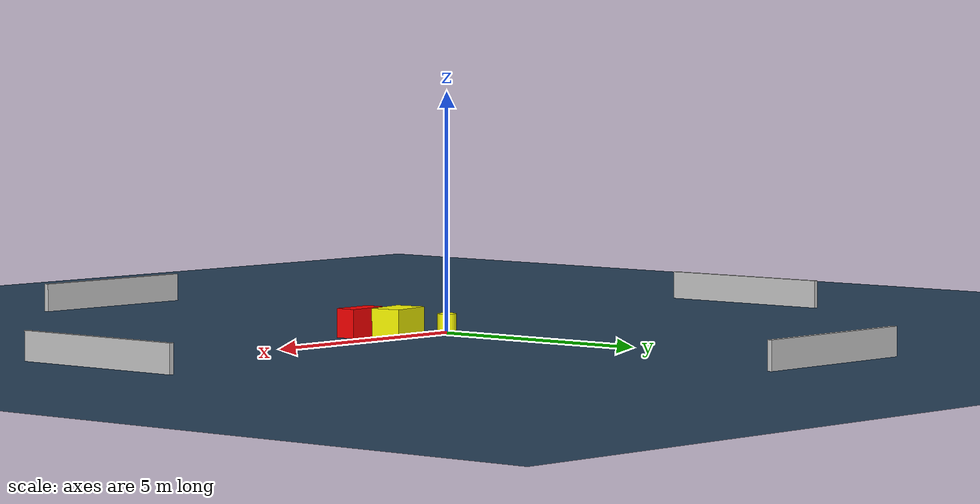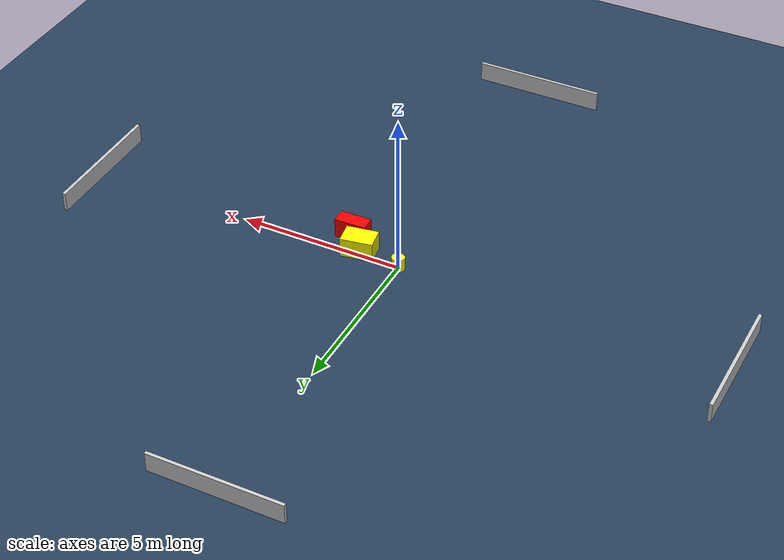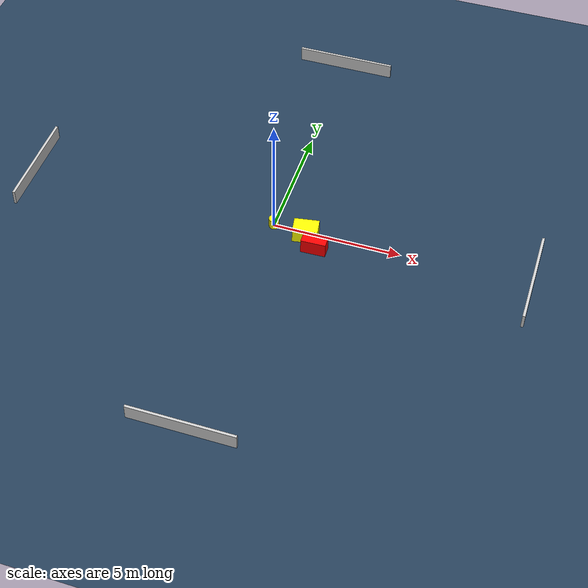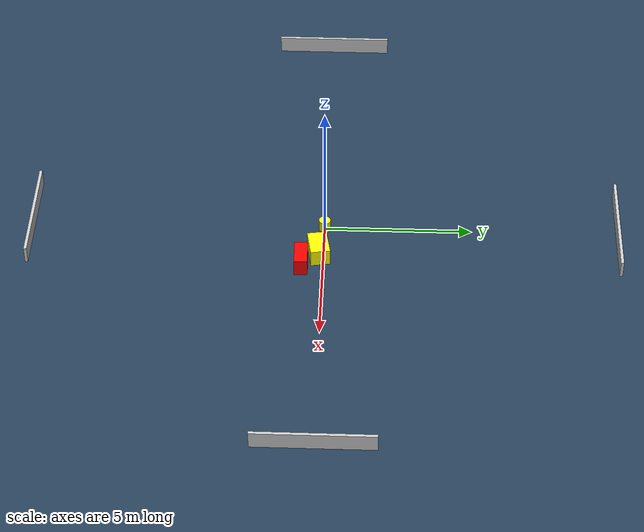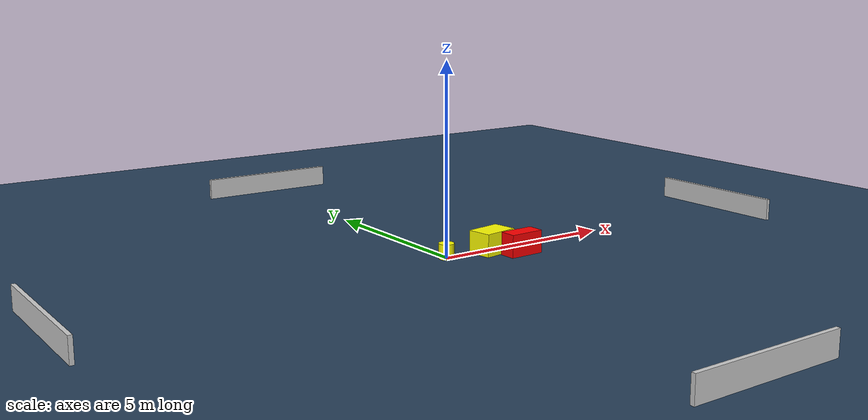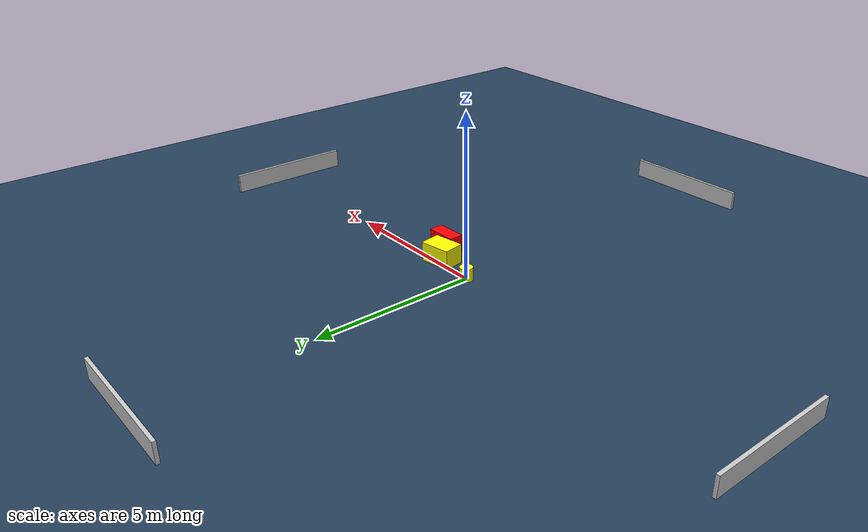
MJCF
<?xml version="1.0" ?>
<mujoco model="generated_environment">
  <option timestep="0.01" integrator="RK4" cone="elliptic"/>
  <default>
    <geom density="1"/>
  </default>
  <asset>
    <texture builtin="gradient" height="3072" name="skybox" rgb1="0.3 0.5 0.7" rgb2="0 0 0" type="skybox" width="512"/>
    <texture builtin="checker" height="300" name="groundplane" rgb1="0.2 0.3 0.4" rgb2="0.1 0.2 0.3" type="2d" width="300"/>
    <material name="groundplane" reflectance="0.2" texrepeat="5 5" texture="groundplane"/>
  </asset>
  <worldbody>
    <light dir="0 0 -1" directional="true" pos="0 0 1.5"/>
    <geom condim="3" friction="0.5 0.005 0.001" material="groundplane" name="floor" pos="0 0 0" size="0 0 0.05" type="plane"/>
    <body name="walls">
      <geom name="wall_1" condim="4" pos="-10.0 0.0 0.3" rgba="0.800000011920929 0.800000011920929 0.800000011920929 1.0" size="0.05 2.0 0.3" type="box"/>
      <geom name="wall_2" condim="4" pos="10.0 0.0 0.3" rgba="0.800000011920929 0.800000011920929 0.800000011920929 1.0" size="0.05 2.0 0.3" type="box"/>
      <geom name="wall_3" condim="4" pos="0.0 -10.0 0.3" rgba="0.800000011920929 0.800000011920929 0.800000011920929 1.0" size="2.0 0.05 0.3" type="box"/>
      <geom name="wall_4" condim="4" pos="0.0 10.0 0.3" rgba="0.800000011920929 0.800000011920929 0.800000011920929 1.0" size="2.0 0.05 0.3" type="box"/>
    </body>
    <body name="robot">
      <joint name="joint_x" type="slide" pos="0 0 0" axis="1 0 0"/>
      <joint name="joint_y" type="slide" pos="0 0 0" axis="0 1 0"/>
      <geom name="robot" type="cylinder" pos="0.0 0.0 0.2" size="0.2 0.2 0.0" mass="5.0" friction="1.0 0.005 0.0001" condim="4" rgba="1.0 1.0 0.0 1.0"/>
    </body>
    <body name="obstacle_1_movable">
      <geom name="obstacle_1_movable" condim="4" pos="1.324102103120631 -0.16227805757879096 0.3" euler="0 0 189.46228981825007" friction="0.0 0.005 0.001" rgba="1.0 1.0 0.0 1.0" size="0.48595335903352516 0.3295456721837263 0.3" type="box" mass="0.1"/>
      <joint type="free"/>
    </body>
    <body name="obstacle_2_static">
      <geom name="obstacle_2_static" condim="4" pos="1.8382742698367727 -0.7422591995705659 0.3" euler="0 0 271.47492857114" friction="0.0 0.005 0.001" rgba="1.0 0.0 0.0 1.0" size="0.22463072867286515 0.4800607184539241 0.3" type="box"/>
    </body>
  </worldbody>
  <actuator>
    <motor name="actuator_x" joint="joint_x" gear="1" ctrlrange="-1 1"/>
    <motor name="actuator_y" joint="joint_y" gear="1" ctrlrange="-1 1"/>
  </actuator>
</mujoco>
